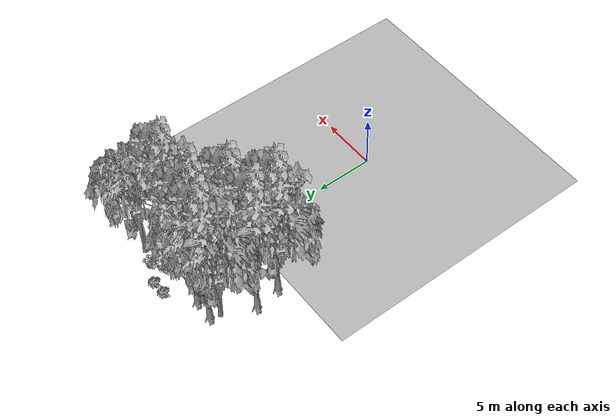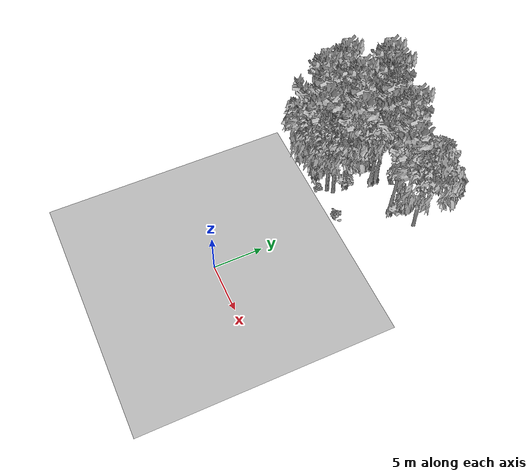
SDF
<sdf version="1.7">
 <world name="default">
  <model name="ground_plane">
   <static>1</static>
   <link name="link">
    <collision name="collision">
     <pose>-50 0 0 0 -0 0</pose>
     <geometry><plane><normal>0 0 1</normal><size>80 80</size></plane></geometry>
     <surface><contact><ode><min_depth>0.01</min_depth><max_vel>0</max_vel></ode></contact></surface>
    </collision>
    <visual name="grass">
     <cast_shadows>0</cast_shadows>
     <geometry>
      <mesh>
       <scale>0.46714285714285714 0.46714285714285714 0.1</scale>
       <uri>file://grass_plane/meshes/grass_plane.dae</uri>
      </mesh>
     </geometry>
    </visual>
   </link>
  </model>
  <model name="Tree 20">
   <static>1</static>
   <pose>-2.9140381651312026 19.249831342052637 0 1.57079 -0 0</pose>
   <link name="link">
    <collision name="collision">
     <geometry><mesh><scale>3.5 5 3.5</scale><uri>model://tree_9/meshes/tree_9.obj</uri></mesh></geometry>
    </collision>
    <visual name="visual">
     <geometry><mesh><scale>3.5 5 3.5</scale><uri>model://tree_9/meshes/tree_9.obj</uri></mesh></geometry>
    </visual>
   </link>
  </model>
  <model name="Tree 42">
   <static>1</static>
   <pose>-5.763996530955787 13.591740417631044 0 1.57079 -0 0</pose>
   <link name="link">
    <collision name="collision">
     <geometry><mesh><scale>3.5 5 3.5</scale><uri>model://tree_9/meshes/tree_9.obj</uri></mesh></geometry>
    </collision>
    <visual name="visual">
     <geometry><mesh><scale>3.5 5 3.5</scale><uri>model://tree_9/meshes/tree_9.obj</uri></mesh></geometry>
    </visual>
   </link>
  </model>
  <model name="Tree 67">
   <static>1</static>
   <pose>1.2123539612829575 18.521096722971123 0 1.57079 -0 0</pose>
   <link name="link">
    <collision name="collision">
     <geometry><mesh><scale>3.5 5 3.5</scale><uri>model://tree_9/meshes/tree_9.obj</uri></mesh></geometry>
    </collision>
    <visual name="visual">
     <geometry><mesh><scale>3.5 5 3.5</scale><uri>model://tree_9/meshes/tree_9.obj</uri></mesh></geometry>
    </visual>
   </link>
  </model>
  <model name="Tree 105">
   <static>1</static>
   <pose>-5.700196547747758 13.566073601225327 0 1.57079 -0 0</pose>
   <link name="link">
    <collision name="collision">
     <geometry><mesh><scale>3.5 5 3.5</scale><uri>model://tree_2/meshes/tree_2.obj</uri></mesh></geometry>
    </collision>
    <visual name="visual">
     <geometry><mesh><scale>3.5 5 3.5</scale><uri>model://tree_2/meshes/tree_2.obj</uri></mesh></geometry>
    </visual>
   </link>
  </model>
  <model name="Tree 110">
   <static>1</static>
   <pose>3.5554947205008673 19.819796838832602 0 1.57079 -0 0</pose>
   <link name="link">
    <collision name="collision">
     <geometry><mesh><scale>3.5 5 3.5</scale><uri>model://tree_2/meshes/tree_2.obj</uri></mesh></geometry>
    </collision>
    <visual name="visual">
     <geometry><mesh><scale>3.5 5 3.5</scale><uri>model://tree_2/meshes/tree_2.obj</uri></mesh></geometry>
    </visual>
   </link>
  </model>
  <model name="Tree 124">
   <static>1</static>
   <pose>-3.2950810200334075 14.420993070209292 0 1.57079 -0 0</pose>
   <link name="link">
    <collision name="collision">
     <geometry><mesh><scale>3.5 5 3.5</scale><uri>model://tree_2/meshes/tree_2.obj</uri></mesh></geometry>
    </collision>
    <visual name="visual">
     <geometry><mesh><scale>3.5 5 3.5</scale><uri>model://tree_2/meshes/tree_2.obj</uri></mesh></geometry>
    </visual>
   </link>
  </model>
  <model name="Tree 148">
   <static>1</static>
   <pose>-4.662642994368717 19.276277624464626 0 1.57079 -0 0</pose>
   <link name="link">
    <collision name="collision">
     <geometry><mesh><scale>3.5 5 3.5</scale><uri>model://tree_9/meshes/tree_9.obj</uri></mesh></geometry>
    </collision>
    <visual name="visual">
     <geometry><mesh><scale>3.5 5 3.5</scale><uri>model://tree_9/meshes/tree_9.obj</uri></mesh></geometry>
    </visual>
   </link>
  </model>
  <model name="Tree 163">
   <static>1</static>
   <pose>-5.145066036246533 18.519647263816182 0 1.57079 -0 0</pose>
   <link name="link">
    <collision name="collision">
     <geometry><mesh><scale>3.5 5 3.5</scale><uri>model://tree_2/meshes/tree_2.obj</uri></mesh></geometry>
    </collision>
    <visual name="visual">
     <geometry><mesh><scale>3.5 5 3.5</scale><uri>model://tree_2/meshes/tree_2.obj</uri></mesh></geometry>
    </visual>
   </link>
  </model>
  <model name="Tree 178">
   <static>1</static>
   <pose>-6.124449746953225 15.840581951896482 0 1.57079 -0 0</pose>
   <link name="link">
    <collision name="collision">
     <geometry><mesh><scale>3.5 5 3.5</scale><uri>model://tree_9/meshes/tree_9.obj</uri></mesh></geometry>
    </collision>
    <visual name="visual">
     <geometry><mesh><scale>3.5 5 3.5</scale><uri>model://tree_9/meshes/tree_9.obj</uri></mesh></geometry>
    </visual>
   </link>
  </model>
  <model name="Tree 248">
   <static>1</static>
   <pose>-2.873031588800238 18.659909396987175 0 1.57079 -0 0</pose>
   <link name="link">
    <collision name="collision">
     <geometry><mesh><scale>3.5 5 3.5</scale><uri>model://tree_9/meshes/tree_9.obj</uri></mesh></geometry>
    </collision>
    <visual name="visual">
     <geometry><mesh><scale>3.5 5 3.5</scale><uri>model://tree_9/meshes/tree_9.obj</uri></mesh></geometry>
    </visual>
   </link>
  </model>
  <model name="Tree 259">
   <static>1</static>
   <pose>-3.761585420272766 13.965883481199953 0 1.57079 -0 0</pose>
   <link name="link">
    <collision name="collision">
     <geometry><mesh><scale>3.5 5 3.5</scale><uri>model://tree_2/meshes/tree_2.obj</uri></mesh></geometry>
    </collision>
    <visual name="visual">
     <geometry><mesh><scale>3.5 5 3.5</scale><uri>model://tree_2/meshes/tree_2.obj</uri></mesh></geometry>
    </visual>
   </link>
  </model>
  <model name="Tree 309">
   <static>1</static>
   <pose>-4.386153776140212 18.108014820790608 0 1.57079 -0 0</pose>
   <link name="link">
    <collision name="collision">
     <geometry><mesh><scale>3.5 5 3.5</scale><uri>model://tree_2/meshes/tree_2.obj</uri></mesh></geometry>
    </collision>
    <visual name="visual">
     <geometry><mesh><scale>3.5 5 3.5</scale><uri>model://tree_2/meshes/tree_2.obj</uri></mesh></geometry>
    </visual>
   </link>
  </model>
  <model name="Tree 434">
   <static>1</static>
   <pose>-3.586091061005426 15.975782191905445 0 1.57079 -0 0</pose>
   <link name="link">
    <collision name="collision">
     <geometry><mesh><scale>3.5 5 3.5</scale><uri>model://tree_9/meshes/tree_9.obj</uri></mesh></geometry>
    </collision>
    <visual name="visual">
     <geometry><mesh><scale>3.5 5 3.5</scale><uri>model://tree_9/meshes/tree_9.obj</uri></mesh></geometry>
    </visual>
   </link>
  </model>
  <model name="Tree 516">
   <static>1</static>
   <pose>-3.2410570526736535 18.852135694365202 0 1.57079 -0 0</pose>
   <link name="link">
    <collision name="collision">
     <geometry><mesh><scale>3.5 5 3.5</scale><uri>model://tree_2/meshes/tree_2.obj</uri></mesh></geometry>
    </collision>
    <visual name="visual">
     <geometry><mesh><scale>3.5 5 3.5</scale><uri>model://tree_2/meshes/tree_2.obj</uri></mesh></geometry>
    </visual>
   </link>
  </model>
  <model name="Bush 68">
   <static>1</static>
   <pose>-0.23692523835362778 13.02960863897318 0 1.57079 -0 0</pose>
   <link name="link">
    <collision name="collision">
     <geometry><mesh><scale>2 2 2</scale><uri>model://bush_4/meshes/bush_4.obj</uri></mesh></geometry>
     <surface><contact><collide_without_contact>false</collide_without_contact></contact></surface>
    </collision>
    <visual name="visual">
     <geometry><mesh><scale>2 2 2</scale><uri>model://bush_4/meshes/bush_4.obj</uri></mesh></geometry>
    </visual>
   </link>
  </model>
  <model name="Bush 70">
   <static>1</static>
   <pose>2.1108782592248616 19.948947012354182 0 1.57079 -0 0</pose>
   <link name="link">
    <collision name="collision">
     <geometry><mesh><scale>2 2 2</scale><uri>model://bush_0/meshes/bush_0.obj</uri></mesh></geometry>
     <surface><contact><collide_without_contact>false</collide_without_contact></contact></surface>
    </collision>
    <visual name="visual">
     <geometry><mesh><scale>2 2 2</scale><uri>model://bush_0/meshes/bush_0.obj</uri></mesh></geometry>
    </visual>
   </link>
  </model>
  <model name="Bush 241">
   <static>1</static>
   <pose>1.751330300479367 18.92655857733913 0 1.57079 -0 0</pose>
   <link name="link">
    <collision name="collision">
     <geometry><mesh><scale>2 2 2</scale><uri>model://bush_1/meshes/bush_1.obj</uri></mesh></geometry>
     <surface><contact><collide_without_contact>false</collide_without_contact></contact></surface>
    </collision>
    <visual name="visual">
     <geometry><mesh><scale>2 2 2</scale><uri>model://bush_1/meshes/bush_1.obj</uri></mesh></geometry>
    </visual>
   </link>
  </model>
  <model name="Bush 335">
   <static>1</static>
   <pose>-0.6332065005889902 20.85567491836646 0 1.57079 -0 0</pose>
   <link name="link">
    <collision name="collision">
     <geometry><mesh><scale>2 2 2</scale><uri>model://bush_2/meshes/bush_2.obj</uri></mesh></geometry>
     <surface><contact><collide_without_contact>false</collide_without_contact></contact></surface>
    </collision>
    <visual name="visual">
     <geometry><mesh><scale>2 2 2</scale><uri>model://bush_2/meshes/bush_2.obj</uri></mesh></geometry>
    </visual>
   </link>
  </model>
  <model name="Bush 489">
   <static>1</static>
   <pose>0.9254208734694771 19.677518507015115 0 1.57079 -0 0</pose>
   <link name="link">
    <collision name="collision">
     <geometry><mesh><scale>2 2 2</scale><uri>model://bush_4/meshes/bush_4.obj</uri></mesh></geometry>
     <surface><contact><collide_without_contact>false</collide_without_contact></contact></surface>
    </collision>
    <visual name="visual">
     <geometry><mesh><scale>2 2 2</scale><uri>model://bush_4/meshes/bush_4.obj</uri></mesh></geometry>
    </visual>
   </link>
  </model>
  <model name="Bush 490">
   <static>1</static>
   <pose>1.9334436847896868 20.356843832236144 0 1.57079 -0 0</pose>
   <link name="link">
    <collision name="collision">
     <geometry><mesh><scale>2 2 2</scale><uri>model://bush_0/meshes/bush_0.obj</uri></mesh></geometry>
     <surface><contact><collide_without_contact>false</collide_without_contact></contact></surface>
    </collision>
    <visual name="visual">
     <geometry><mesh><scale>2 2 2</scale><uri>model://bush_0/meshes/bush_0.obj</uri></mesh></geometry>
    </visual>
   </link>
  </model>
  <model name="Bush 572">
   <static>1</static>
   <pose>0.5949209776194166 20.91482722227635 0 1.57079 -0 0</pose>
   <link name="link">
    <collision name="collision">
     <geometry><mesh><scale>2 2 2</scale><uri>model://bush_2/meshes/bush_2.obj</uri></mesh></geometry>
     <surface><contact><collide_without_contact>false</collide_without_contact></contact></surface>
    </collision>
    <visual name="visual">
     <geometry><mesh><scale>2 2 2</scale><uri>model://bush_2/meshes/bush_2.obj</uri></mesh></geometry>
    </visual>
   </link>
  </model>
  <model name="Bush 603">
   <static>1</static>
   <pose>-4.3616636776201005 13.259570164513178 0 1.57079 -0 0</pose>
   <link name="link">
    <collision name="collision">
     <geometry><mesh><scale>2 2 2</scale><uri>model://bush_2/meshes/bush_2.obj</uri></mesh></geometry>
     <surface><contact><collide_without_contact>false</collide_without_contact></contact></surface>
    </collision>
    <visual name="visual">
     <geometry><mesh><scale>2 2 2</scale><uri>model://bush_2/meshes/bush_2.obj</uri></mesh></geometry>
    </visual>
   </link>
  </model>
  <model name="Bush 625">
   <static>1</static>
   <pose>-3.545894031561396 15.820926610205099 0 1.57079 -0 0</pose>
   <link name="link">
    <collision name="collision">
     <geometry><mesh><scale>2 2 2</scale><uri>model://bush_1/meshes/bush_1.obj</uri></mesh></geometry>
     <surface><contact><collide_without_contact>false</collide_without_contact></contact></surface>
    </collision>
    <visual name="visual">
     <geometry><mesh><scale>2 2 2</scale><uri>model://bush_1/meshes/bush_1.obj</uri></mesh></geometry>
    </visual>
   </link>
  </model>
 </world>
</sdf>
